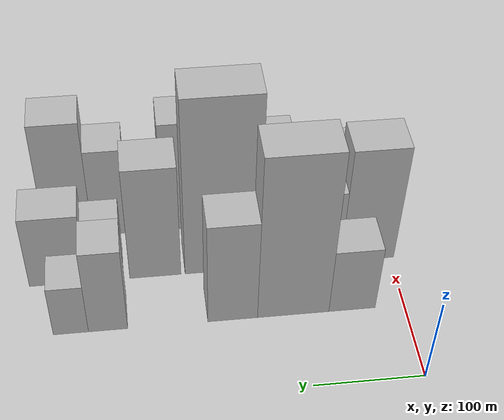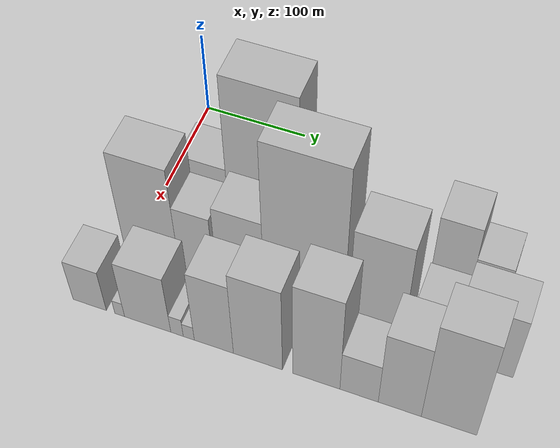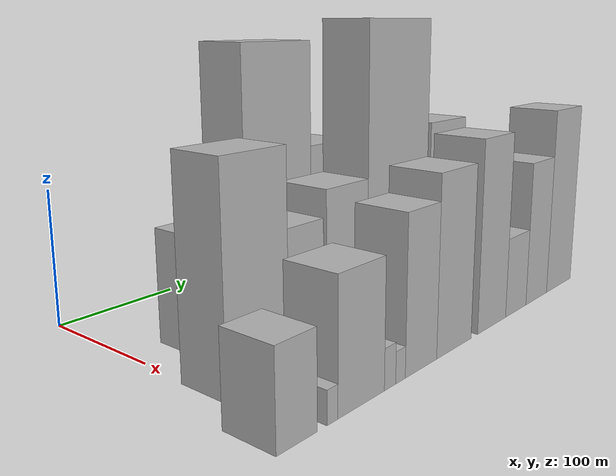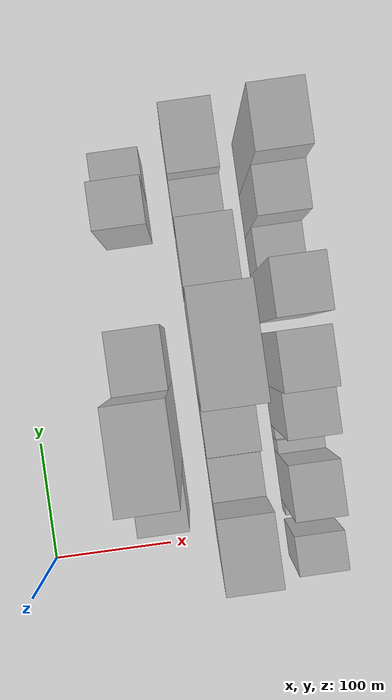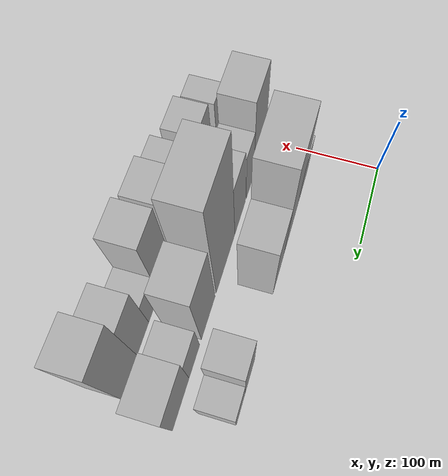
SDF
<sdf version="1.6">
 <world name="default">
  <model name="building_17">
   <static>1</static>
   <pose>100.0000 49.7188 0 0.000000 0.000000 0.000000</pose>
   <link name="link">
    <pose>0 0 40.50 0 0 0</pose>
    <collision name="collision"><geometry><box><size>40.0000 43.7797 81.0000</size></box></geometry></collision>
    <visual name="visual">
     <cast_shadows>0</cast_shadows>
     <geometry><box><size>40.0000 43.7797 81.0000</size></box></geometry>
     <material>
      <script>
       <uri>model://HANNAS_wall/materials/scripts</uri>
       <uri>model://HANNAS_wall/materials/textures</uri>
       <name>vrc/HANNAS_wall</name>
      </script>
     </material>
    </visual>
   </link>
  </model>
  <model name="building_18">
   <static>1</static>
   <pose>100.0000 105.1265 0 0.000000 0.000000 0.000000</pose>
   <link name="link">
    <pose>0 0 100.50 0 0 0</pose>
    <collision name="collision"><geometry><box><size>40.0000 67.0357 201.0000</size></box></geometry></collision>
    <visual name="visual">
     <cast_shadows>0</cast_shadows>
     <geometry><box><size>40.0000 67.0357 201.0000</size></box></geometry>
     <material>
      <script>
       <uri>model://HANNAS_wall/materials/scripts</uri>
       <uri>model://HANNAS_wall/materials/textures</uri>
       <name>vrc/HANNAS_wall</name>
      </script>
     </material>
    </visual>
   </link>
  </model>
  <model name="building_19">
   <static>1</static>
   <pose>100.0000 161.7605 0 0.000000 0.000000 0.000000</pose>
   <link name="link">
    <pose>0 0 63.00 0 0 0</pose>
    <collision name="collision"><geometry><box><size>40.0000 46.2322 126.0000</size></box></geometry></collision>
    <visual name="visual">
     <cast_shadows>0</cast_shadows>
     <geometry><box><size>40.0000 46.2322 126.0000</size></box></geometry>
     <material>
      <script>
       <uri>model://HANNAS_wall/materials/scripts</uri>
       <uri>model://HANNAS_wall/materials/textures</uri>
       <name>vrc/HANNAS_wall</name>
      </script>
     </material>
    </visual>
   </link>
  </model>
  <model name="building_20">
   <static>1</static>
   <pose>100.0000 276.7857 0 0.000000 0.000000 0.000000</pose>
   <link name="link">
    <pose>0 0 52.50 0 0 0</pose>
    <collision name="collision"><geometry><box><size>40.0000 35.9394 105.0000</size></box></geometry></collision>
    <visual name="visual">
     <cast_shadows>0</cast_shadows>
     <geometry><box><size>40.0000 35.9394 105.0000</size></box></geometry>
     <material>
      <script>
       <uri>model://HANNAS_wall/materials/scripts</uri>
       <uri>model://HANNAS_wall/materials/textures</uri>
       <name>vrc/HANNAS_wall</name>
      </script>
     </material>
    </visual>
   </link>
  </model>
  <model name="building_21">
   <static>1</static>
   <pose>100.0000 310.7436 0 0.000000 0.000000 0.000000</pose>
   <link name="link">
    <pose>0 0 31.50 0 0 0</pose>
    <collision name="collision"><geometry><box><size>40.0000 31.9765 63.0000</size></box></geometry></collision>
    <visual name="visual">
     <cast_shadows>0</cast_shadows>
     <geometry><box><size>40.0000 31.9765 63.0000</size></box></geometry>
     <material>
      <script>
       <uri>model://HANNAS_wall/materials/scripts</uri>
       <uri>model://HANNAS_wall/materials/textures</uri>
       <name>vrc/HANNAS_wall</name>
      </script>
     </material>
    </visual>
   </link>
  </model>
  <model name="building_47">
   <static>1</static>
   <pose>160.0000 22.8496 0 0.000000 0.000000 0.000000</pose>
   <link name="link">
    <pose>0 0 72.00 0 0 0</pose>
    <collision name="collision"><geometry><box><size>40.0000 52.5208 144.0000</size></box></geometry></collision>
    <visual name="visual">
     <cast_shadows>0</cast_shadows>
     <geometry><box><size>40.0000 52.5208 144.0000</size></box></geometry>
     <material>
      <script>
       <uri>model://HANNAS_wall/materials/scripts</uri>
       <uri>model://HANNAS_wall/materials/textures</uri>
       <name>vrc/HANNAS_wall</name>
      </script>
     </material>
    </visual>
   </link>
  </model>
  <model name="building_48">
   <static>1</static>
   <pose>160.0000 65.7420 0 0.000000 0.000000 0.000000</pose>
   <link name="link">
    <pose>0 0 46.50 0 0 0</pose>
    <collision name="collision"><geometry><box><size>40.0000 33.2640 93.0000</size></box></geometry></collision>
    <visual name="visual">
     <cast_shadows>0</cast_shadows>
     <geometry><box><size>40.0000 33.2640 93.0000</size></box></geometry>
     <material>
      <script>
       <uri>model://HANNAS_wall/materials/scripts</uri>
       <uri>model://HANNAS_wall/materials/textures</uri>
       <name>vrc/HANNAS_wall</name>
      </script>
     </material>
    </visual>
   </link>
  </model>
  <model name="building_49">
   <static>1</static>
   <pose>160.0000 107.1254 0 0.000000 0.000000 0.000000</pose>
   <link name="link">
    <pose>0 0 55.50 0 0 0</pose>
    <collision name="collision"><geometry><box><size>40.0000 43.5029 111.0000</size></box></geometry></collision>
    <visual name="visual">
     <cast_shadows>0</cast_shadows>
     <geometry><box><size>40.0000 43.5029 111.0000</size></box></geometry>
     <material>
      <script>
       <uri>model://HANNAS_wall/materials/scripts</uri>
       <uri>model://HANNAS_wall/materials/textures</uri>
       <name>vrc/HANNAS_wall</name>
      </script>
     </material>
    </visual>
   </link>
  </model>
  <model name="building_50">
   <static>1</static>
   <pose>160.0000 164.9532 0 0.000000 0.000000 0.000000</pose>
   <link name="link">
    <pose>0 0 108.00 0 0 0</pose>
    <collision name="collision"><geometry><box><size>40.0000 72.1527 216.0000</size></box></geometry></collision>
    <visual name="visual">
     <cast_shadows>0</cast_shadows>
     <geometry><box><size>40.0000 72.1527 216.0000</size></box></geometry>
     <material>
      <script>
       <uri>model://HANNAS_wall/materials/scripts</uri>
       <uri>model://HANNAS_wall/materials/textures</uri>
       <name>vrc/HANNAS_wall</name>
      </script>
     </material>
    </visual>
   </link>
  </model>
  <model name="building_51">
   <static>1</static>
   <pose>160.0000 229.6147 0 0.000000 0.000000 0.000000</pose>
   <link name="link">
    <pose>0 0 70.50 0 0 0</pose>
    <collision name="collision"><geometry><box><size>40.0000 49.1704 141.0000</size></box></geometry></collision>
    <visual name="visual">
     <cast_shadows>0</cast_shadows>
     <geometry><box><size>40.0000 49.1704 141.0000</size></box></geometry>
     <material>
      <script>
       <uri>model://HANNAS_wall/materials/scripts</uri>
       <uri>model://HANNAS_wall/materials/textures</uri>
       <name>vrc/HANNAS_wall</name>
      </script>
     </material>
    </visual>
   </link>
  </model>
  <model name="building_52">
   <static>1</static>
   <pose>160.0000 278.0520 0 0.000000 0.000000 0.000000</pose>
   <link name="link">
    <pose>0 0 34.50 0 0 0</pose>
    <collision name="collision"><geometry><box><size>40.0000 35.7041 69.0000</size></box></geometry></collision>
    <visual name="visual">
     <cast_shadows>0</cast_shadows>
     <geometry><box><size>40.0000 35.7041 69.0000</size></box></geometry>
     <material>
      <script>
       <uri>model://HANNAS_wall/materials/scripts</uri>
       <uri>model://HANNAS_wall/materials/textures</uri>
       <name>vrc/HANNAS_wall</name>
      </script>
     </material>
    </visual>
   </link>
  </model>
  <model name="building_53">
   <static>1</static>
   <pose>160.0000 322.7842 0 0.000000 0.000000 0.000000</pose>
   <link name="link">
    <pose>0 0 45.00 0 0 0</pose>
    <collision name="collision"><geometry><box><size>40.0000 53.7603 90.0000</size></box></geometry></collision>
    <visual name="visual">
     <cast_shadows>0</cast_shadows>
     <geometry><box><size>40.0000 53.7603 90.0000</size></box></geometry>
     <material>
      <script>
       <uri>model://HANNAS_wall/materials/scripts</uri>
       <uri>model://HANNAS_wall/materials/textures</uri>
       <name>vrc/HANNAS_wall</name>
      </script>
     </material>
    </visual>
   </link>
  </model>
  <model name="building_74">
   <static>1</static>
   <pose>220.0000 -9.1567 0 0.000000 0.000000 0.000000</pose>
   <link name="link">
    <pose>0 0 30.00 0 0 0</pose>
    <collision name="collision"><geometry><box><size>40.0000 31.7505 60.0000</size></box></geometry></collision>
    <visual name="visual">
     <cast_shadows>0</cast_shadows>
     <geometry><box><size>40.0000 31.7505 60.0000</size></box></geometry>
     <material>
      <script>
       <uri>model://HANNAS_wall/materials/scripts</uri>
       <uri>model://HANNAS_wall/materials/textures</uri>
       <name>vrc/HANNAS_wall</name>
      </script>
     </material>
    </visual>
   </link>
  </model>
  <model name="building_75">
   <static>1</static>
   <pose>220.0000 19.3440 0 0.000000 0.000000 0.000000</pose>
   <link name="link">
    <pose>0 0 10.50 0 0 0</pose>
    <collision name="collision"><geometry><box><size>40.0000 9.2508 21.0000</size></box></geometry></collision>
    <visual name="visual">
     <cast_shadows>0</cast_shadows>
     <geometry><box><size>40.0000 9.2508 21.0000</size></box></geometry>
     <material>
      <script>
       <uri>model://HANNAS_wall/materials/scripts</uri>
       <uri>model://HANNAS_wall/materials/textures</uri>
       <name>vrc/HANNAS_wall</name>
      </script>
     </material>
    </visual>
   </link>
  </model>
  <model name="building_76">
   <static>1</static>
   <pose>220.0000 45.6242 0 0.000000 0.000000 0.000000</pose>
   <link name="link">
    <pose>0 0 42.00 0 0 0</pose>
    <collision name="collision"><geometry><box><size>40.0000 43.3096 84.0000</size></box></geometry></collision>
    <visual name="visual">
     <cast_shadows>0</cast_shadows>
     <geometry><box><size>40.0000 43.3096 84.0000</size></box></geometry>
     <material>
      <script>
       <uri>model://HANNAS_wall/materials/scripts</uri>
       <uri>model://HANNAS_wall/materials/textures</uri>
       <name>vrc/HANNAS_wall</name>
      </script>
     </material>
    </visual>
   </link>
  </model>
  <model name="building_77">
   <static>1</static>
   <pose>220.0000 73.0393 0 0.000000 0.000000 0.000000</pose>
   <link name="link">
    <pose>0 0 13.50 0 0 0</pose>
    <collision name="collision"><geometry><box><size>40.0000 11.5207 27.0000</size></box></geometry></collision>
    <visual name="visual">
     <cast_shadows>0</cast_shadows>
     <geometry><box><size>40.0000 11.5207 27.0000</size></box></geometry>
     <material>
      <script>
       <uri>model://HANNAS_wall/materials/scripts</uri>
       <uri>model://HANNAS_wall/materials/textures</uri>
       <name>vrc/HANNAS_wall</name>
      </script>
     </material>
    </visual>
   </link>
  </model>
  <model name="building_78">
   <static>1</static>
   <pose>220.0000 83.8946 0 0.000000 0.000000 0.000000</pose>
   <link name="link">
    <pose>0 0 10.50 0 0 0</pose>
    <collision name="collision"><geometry><box><size>40.0000 10.1899 21.0000</size></box></geometry></collision>
    <visual name="visual">
     <cast_shadows>0</cast_shadows>
     <geometry><box><size>40.0000 10.1899 21.0000</size></box></geometry>
     <material>
      <script>
       <uri>model://HANNAS_wall/materials/scripts</uri>
       <uri>model://HANNAS_wall/materials/textures</uri>
       <name>vrc/HANNAS_wall</name>
      </script>
     </material>
    </visual>
   </link>
  </model>
  <model name="building_79">
   <static>1</static>
   <pose>220.0000 106.8082 0 0.000000 0.000000 0.000000</pose>
   <link name="link">
    <pose>0 0 52.50 0 0 0</pose>
    <collision name="collision"><geometry><box><size>40.0000 35.6374 105.0000</size></box></geometry></collision>
    <visual name="visual">
     <cast_shadows>0</cast_shadows>
     <geometry><box><size>40.0000 35.6374 105.0000</size></box></geometry>
     <material>
      <script>
       <uri>model://HANNAS_wall/materials/scripts</uri>
       <uri>model://HANNAS_wall/materials/textures</uri>
       <name>vrc/HANNAS_wall</name>
      </script>
     </material>
    </visual>
   </link>
  </model>
  <model name="building_80">
   <static>1</static>
   <pose>220.0000 146.6291 0 0.000000 0.000000 0.000000</pose>
   <link name="link">
    <pose>0 0 61.50 0 0 0</pose>
    <collision name="collision"><geometry><box><size>40.0000 44.0043 123.0000</size></box></geometry></collision>
    <visual name="visual">
     <cast_shadows>0</cast_shadows>
     <geometry><box><size>40.0000 44.0043 123.0000</size></box></geometry>
     <material>
      <script>
       <uri>model://HANNAS_wall/materials/scripts</uri>
       <uri>model://HANNAS_wall/materials/textures</uri>
       <name>vrc/HANNAS_wall</name>
      </script>
     </material>
    </visual>
   </link>
  </model>
  <model name="building_81">
   <static>1</static>
   <pose>220.0000 198.3652 0 0.000000 0.000000 0.000000</pose>
   <link name="link">
    <pose>0 0 69.00 0 0 0</pose>
    <collision name="collision"><geometry><box><size>40.0000 41.4679 138.0000</size></box></geometry></collision>
    <visual name="visual">
     <cast_shadows>0</cast_shadows>
     <geometry><box><size>40.0000 41.4679 138.0000</size></box></geometry>
     <material>
      <script>
       <uri>model://HANNAS_wall/materials/scripts</uri>
       <uri>model://HANNAS_wall/materials/textures</uri>
       <name>vrc/HANNAS_wall</name>
      </script>
     </material>
    </visual>
   </link>
  </model>
  <model name="building_82">
   <static>1</static>
   <pose>220.0000 235.6492 0 0.000000 0.000000 0.000000</pose>
   <link name="link">
    <pose>0 0 30.00 0 0 0</pose>
    <collision name="collision"><geometry><box><size>40.0000 33.1000 60.0000</size></box></geometry></collision>
    <visual name="visual">
     <cast_shadows>0</cast_shadows>
     <geometry><box><size>40.0000 33.1000 60.0000</size></box></geometry>
     <material>
      <script>
       <uri>model://HANNAS_wall/materials/scripts</uri>
       <uri>model://HANNAS_wall/materials/textures</uri>
       <name>vrc/HANNAS_wall</name>
      </script>
     </material>
    </visual>
   </link>
  </model>
  <model name="building_83">
   <static>1</static>
   <pose>220.0000 270.5148 0 0.000000 0.000000 0.000000</pose>
   <link name="link">
    <pose>0 0 55.50 0 0 0</pose>
    <collision name="collision"><geometry><box><size>40.0000 36.6313 111.0000</size></box></geometry></collision>
    <visual name="visual">
     <cast_shadows>0</cast_shadows>
     <geometry><box><size>40.0000 36.6313 111.0000</size></box></geometry>
     <material>
      <script>
       <uri>model://HANNAS_wall/materials/scripts</uri>
       <uri>model://HANNAS_wall/materials/textures</uri>
       <name>vrc/HANNAS_wall</name>
      </script>
     </material>
    </visual>
   </link>
  </model>
  <model name="building_84">
   <static>1</static>
   <pose>220.0000 312.0341 0 0.000000 0.000000 0.000000</pose>
   <link name="link">
    <pose>0 0 73.50 0 0 0</pose>
    <collision name="collision"><geometry><box><size>40.0000 46.4073 147.0000</size></box></geometry></collision>
    <visual name="visual">
     <cast_shadows>0</cast_shadows>
     <geometry><box><size>40.0000 46.4073 147.0000</size></box></geometry>
     <material>
      <script>
       <uri>model://HANNAS_wall/materials/scripts</uri>
       <uri>model://HANNAS_wall/materials/textures</uri>
       <name>vrc/HANNAS_wall</name>
      </script>
     </material>
    </visual>
   </link>
  </model>
 </world>
</sdf>
